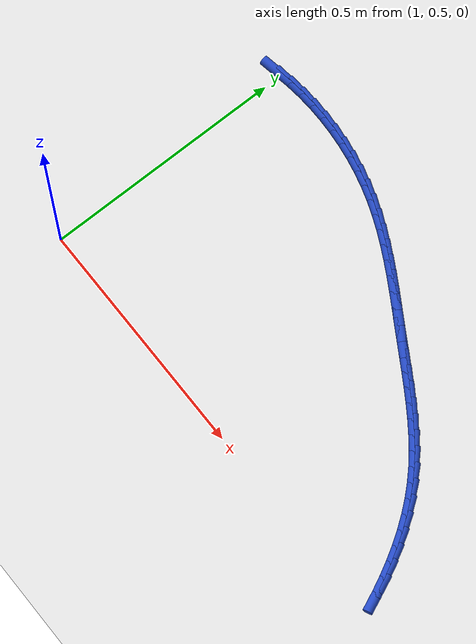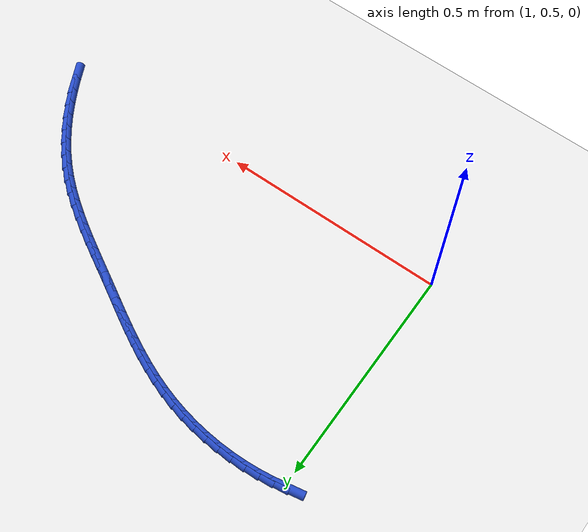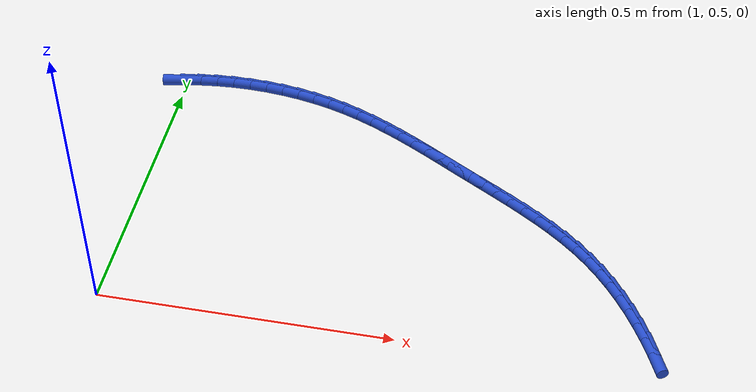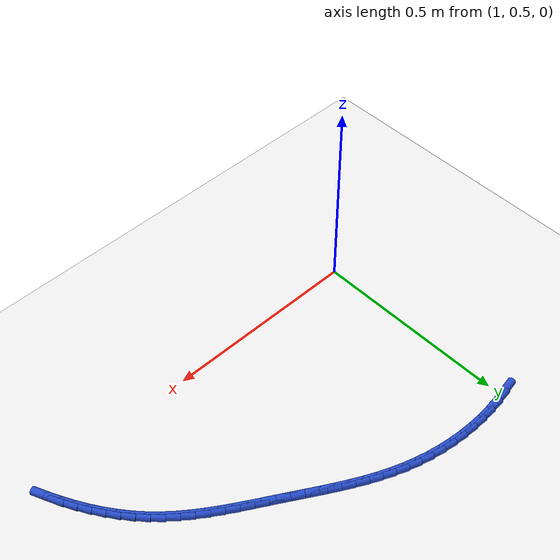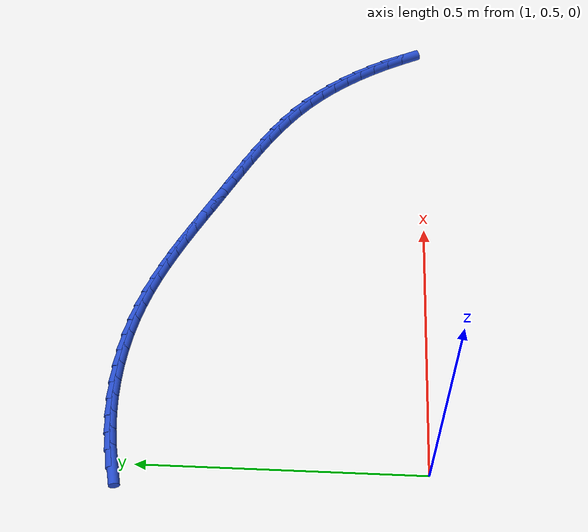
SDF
<sdf version="1.6">
 <world name="default">
  <model name="ground_plane">
   <static>1</static>
   <link name="link">
    <collision name="collision">
     <geometry><plane><normal>0 0 1</normal><size>100 100</size></plane></geometry>
     <surface><friction><ode><mu>100</mu><mu2>50</mu2></ode></friction></surface>
    </collision>
    <visual name="visual">
     <cast_shadows>0</cast_shadows>
     <geometry><plane><normal>0 0 1</normal><size>100 100</size></plane></geometry>
     <material>
      <script><uri>file://media/materials/scripts/gazebo.material</uri><name>Gazebo/WhiteGlow</name></script>
     </material>
    </visual>
   </link>
  </model>
  <model name="line">
   <link name="link_50">
    <pose>0.9953558554791279 1.0367086536794146 0.01 0 1.57 0.17591055692172775</pose>
    <collision name="collision">
     <geometry><cylinder><radius>0.01</radius><length>0.08</length></cylinder></geometry>
    </collision>
    <visual name="visual">
     <material>
      <script><name>Gazebo/Blue</name><uri>file://media/materials/scripts/gazebo.material</uri></script>
     </material>
     <geometry><cylinder><radius>0.01</radius><length>0.08</length></cylinder></geometry>
    </visual>
   </link>
   <link name="link_51">
    <pose>1.0264040082564816 1.0422273942406821 0.01 0 1.57 0.11814787920801474</pose>
    <collision name="collision">
     <geometry><cylinder><radius>0.01</radius><length>0.08</length></cylinder></geometry>
    </collision>
    <visual name="visual">
     <material>
      <script><name>Gazebo/Blue</name><uri>file://media/materials/scripts/gazebo.material</uri></script>
     </material>
     <geometry><cylinder><radius>0.01</radius><length>0.08</length></cylinder></geometry>
    </visual>
   </link>
   <link name="link_52">
    <pose>1.057905274626059 1.0459666167715465 0.01 0 1.57 0.06240167657679977</pose>
    <collision name="collision">
     <geometry><cylinder><radius>0.01</radius><length>0.08</length></cylinder></geometry>
    </collision>
    <visual name="visual">
     <material>
      <script><name>Gazebo/Blue</name><uri>file://media/materials/scripts/gazebo.material</uri></script>
     </material>
     <geometry><cylinder><radius>0.01</radius><length>0.08</length></cylinder></geometry>
    </visual>
   </link>
   <link name="link_53">
    <pose>1.089717144038422 1.0479543114352259 0.01 0 1.57 0.00825988952160205</pose>
    <collision name="collision">
     <geometry><cylinder><radius>0.01</radius><length>0.08</length></cylinder></geometry>
    </collision>
    <visual name="visual">
     <material>
      <script><name>Gazebo/Blue</name><uri>file://media/materials/scripts/gazebo.material</uri></script>
     </material>
     <geometry><cylinder><radius>0.01</radius><length>0.08</length></cylinder></geometry>
    </visual>
   </link>
   <link name="link_54">
    <pose>1.1216971059441296 1.0482184683949372 0.01 0 1.57 -0.044693425369481066</pose>
    <collision name="collision">
     <geometry><cylinder><radius>0.01</radius><length>0.08</length></cylinder></geometry>
    </collision>
    <visual name="visual">
     <material>
      <script><name>Gazebo/Blue</name><uri>file://media/materials/scripts/gazebo.material</uri></script>
     </material>
     <geometry><cylinder><radius>0.01</radius><length>0.08</length></cylinder></geometry>
    </visual>
   </link>
   <link name="link_55">
    <pose>1.1537026497937446 1.046787077813898 0.01 0 1.57 -0.09687618377099172</pose>
    <collision name="collision">
     <geometry><cylinder><radius>0.01</radius><length>0.08</length></cylinder></geometry>
    </collision>
    <visual name="visual">
     <material>
      <script><name>Gazebo/Blue</name><uri>file://media/materials/scripts/gazebo.material</uri></script>
     </material>
     <geometry><cylinder><radius>0.01</radius><length>0.08</length></cylinder></geometry>
    </visual>
   </link>
   <link name="link_56">
    <pose>1.1855912650378266 1.0436881298553242 0.01 0 1.57 -0.14870870924018223</pose>
    <collision name="collision">
     <geometry><cylinder><radius>0.01</radius><length>0.08</length></cylinder></geometry>
    </collision>
    <visual name="visual">
     <material>
      <script><name>Gazebo/Blue</name><uri>file://media/materials/scripts/gazebo.material</uri></script>
     </material>
     <geometry><cylinder><radius>0.01</radius><length>0.08</length></cylinder></geometry>
    </visual>
   </link>
   <link name="link_57">
    <pose>1.2172204411269365 1.0389496146824335 0.01 0 1.57 -0.20061572777143358</pose>
    <collision name="collision">
     <geometry><cylinder><radius>0.01</radius><length>0.08</length></cylinder></geometry>
    </collision>
    <visual name="visual">
     <material>
      <script><name>Gazebo/Blue</name><uri>file://media/materials/scripts/gazebo.material</uri></script>
     </material>
     <geometry><cylinder><radius>0.01</radius><length>0.08</length></cylinder></geometry>
    </visual>
   </link>
   <link name="link_58">
    <pose>1.2484476675116352 1.0325995224584432 0.01 0 1.57 -0.2530292478597628</pose>
    <collision name="collision">
     <geometry><cylinder><radius>0.01</radius><length>0.08</length></cylinder></geometry>
    </collision>
    <visual name="visual">
     <material>
      <script><name>Gazebo/Blue</name><uri>file://media/materials/scripts/gazebo.material</uri></script>
     </material>
     <geometry><cylinder><radius>0.01</radius><length>0.08</length></cylinder></geometry>
    </visual>
   </link>
   <link name="link_59">
    <pose>1.279130433642484 1.0246658433465707 0.01 0 1.57 -0.3062944268016827</pose>
    <collision name="collision">
     <geometry><cylinder><radius>0.01</radius><length>0.08</length></cylinder></geometry>
    </collision>
    <visual name="visual">
     <material>
      <script><name>Gazebo/Blue</name><uri>file://media/materials/scripts/gazebo.material</uri></script>
     </material>
     <geometry><cylinder><radius>0.01</radius><length>0.08</length></cylinder></geometry>
    </visual>
   </link>
   <link name="link_60">
    <pose>1.3091296381765127 1.0151786990245255 0.01 0 1.57 -0.35765296409318464</pose>
    <collision name="collision">
     <geometry><cylinder><radius>0.01</radius><length>0.08</length></cylinder></geometry>
    </collision>
    <visual name="visual">
     <material>
      <script><name>Gazebo/Blue</name><uri>file://media/materials/scripts/gazebo.material</uri></script>
     </material>
     <geometry><cylinder><radius>0.01</radius><length>0.08</length></cylinder></geometry>
    </visual>
   </link>
   <link name="link_61">
    <pose>1.338412757697989 1.0042348461475807 0.01 0 1.57 -0.403208440867464</pose>
    <collision name="collision">
     <geometry><cylinder><radius>0.01</radius><length>0.08</length></cylinder></geometry>
    </collision>
    <visual name="visual">
     <material>
      <script><name>Gazebo/Blue</name><uri>file://media/materials/scripts/gazebo.material</uri></script>
     </material>
     <geometry><cylinder><radius>0.01</radius><length>0.08</length></cylinder></geometry>
    </visual>
   </link>
   <link name="link_62">
    <pose>1.3670723335773254 0.9920092347590246 0.01 0 1.57 -0.442389218728154</pose>
    <collision name="collision">
     <geometry><cylinder><radius>0.01</radius><length>0.08</length></cylinder></geometry>
    </collision>
    <visual name="visual">
     <material>
      <script><name>Gazebo/Blue</name><uri>file://media/materials/scripts/gazebo.material</uri></script>
     </material>
     <geometry><cylinder><radius>0.01</radius><length>0.08</length></cylinder></geometry>
    </visual>
   </link>
   <link name="link_63">
    <pose>1.3952080434434846 0.9786812766555373 0.01 0 1.57 -0.47498944959321354</pose>
    <collision name="collision">
     <geometry><cylinder><radius>0.01</radius><length>0.08</length></cylinder></geometry>
    </collision>
    <visual name="visual">
     <material>
      <script><name>Gazebo/Blue</name><uri>file://media/materials/scripts/gazebo.material</uri></script>
     </material>
     <geometry><cylinder><radius>0.01</radius><length>0.08</length></cylinder></geometry>
    </visual>
   </link>
   <link name="link_64">
    <pose>1.4229195649254285 0.9644303836337998 0.01 0 1.57 -0.5009225792779068</pose>
    <collision name="collision">
     <geometry><cylinder><radius>0.01</radius><length>0.08</length></cylinder></geometry>
    </collision>
    <visual name="visual">
     <material>
      <script><name>Gazebo/Blue</name><uri>file://media/materials/scripts/gazebo.material</uri></script>
     </material>
     <geometry><cylinder><radius>0.01</radius><length>0.08</length></cylinder></geometry>
    </visual>
   </link>
   <link name="link_65">
    <pose>1.4503065756521196 0.9494359674904927 0.01 0 1.57 -0.5201802405362448</pose>
    <collision name="collision">
     <geometry><cylinder><radius>0.01</radius><length>0.08</length></cylinder></geometry>
    </collision>
    <visual name="visual">
     <material>
      <script><name>Gazebo/Blue</name><uri>file://media/materials/scripts/gazebo.material</uri></script>
     </material>
     <geometry><cylinder><radius>0.01</radius><length>0.08</length></cylinder></geometry>
    </visual>
   </link>
   <link name="link_66">
    <pose>1.4774687532525212 0.9338774400222963 0.01 0 1.57 -0.5327976883712991</pose>
    <collision name="collision">
     <geometry><cylinder><radius>0.01</radius><length>0.08</length></cylinder></geometry>
    </collision>
    <visual name="visual">
     <material>
      <script><name>Gazebo/Blue</name><uri>file://media/materials/scripts/gazebo.material</uri></script>
     </material>
     <geometry><cylinder><radius>0.01</radius><length>0.08</length></cylinder></geometry>
    </visual>
   </link>
   <link name="link_67">
    <pose>1.5045057753555953 0.9179342130258914 0.01 0 1.57 -0.538827927405153</pose>
    <collision name="collision">
     <geometry><cylinder><radius>0.01</radius><length>0.08</length></cylinder></geometry>
    </collision>
    <visual name="visual">
     <material>
      <script><name>Gazebo/Blue</name><uri>file://media/materials/scripts/gazebo.material</uri></script>
     </material>
     <geometry><cylinder><radius>0.01</radius><length>0.08</length></cylinder></geometry>
    </visual>
   </link>
   <link name="link_68">
    <pose>1.531517319590305 0.9017856982979588 0.01 0 1.57 -0.5383253404514637</pose>
    <collision name="collision">
     <geometry><cylinder><radius>0.01</radius><length>0.08</length></cylinder></geometry>
    </collision>
    <visual name="visual">
     <material>
      <script><name>Gazebo/Blue</name><uri>file://media/materials/scripts/gazebo.material</uri></script>
     </material>
     <geometry><cylinder><radius>0.01</radius><length>0.08</length></cylinder></geometry>
    </visual>
   </link>
   <link name="link_69">
    <pose>1.5586030579915682 0.8856113002994913 0.01 0 1.57 -0.5340646747950105</pose>
    <collision name="collision">
     <geometry><cylinder><radius>0.01</radius><length>0.08</length></cylinder></geometry>
    </collision>
    <visual name="visual">
     <material>
      <script><name>Gazebo/Blue</name><uri>file://media/materials/scripts/gazebo.material</uri></script>
     </material>
     <geometry><cylinder><radius>0.01</radius><length>0.08</length></cylinder></geometry>
    </visual>
   </link>
   <link name="link_70">
    <pose>1.585810009356946 0.8695213772529206 0.01 0 1.57 -0.5354538713124185</pose>
    <collision name="collision">
     <geometry><cylinder><radius>0.01</radius><length>0.08</length></cylinder></geometry>
    </collision>
    <visual name="visual">
     <material>
      <script><name>Gazebo/Blue</name><uri>file://media/materials/scripts/gazebo.material</uri></script>
     </material>
     <geometry><cylinder><radius>0.01</radius><length>0.08</length></cylinder></geometry>
    </visual>
   </link>
   <link name="link_71">
    <pose>1.6130036871650109 0.8533882723946312 0.01 0 1.57 -0.5445229784399765</pose>
    <collision name="collision">
     <geometry><cylinder><radius>0.01</radius><length>0.08</length></cylinder></geometry>
    </collision>
    <visual name="visual">
     <material>
      <script><name>Gazebo/Blue</name><uri>file://media/materials/scripts/gazebo.material</uri></script>
     </material>
     <geometry><cylinder><radius>0.01</radius><length>0.08</length></cylinder></geometry>
    </visual>
   </link>
   <link name="link_72">
    <pose>1.6400105234315538 0.8370330799184423 0.01 0 1.57 -0.5613517820341806</pose>
    <collision name="collision">
     <geometry><cylinder><radius>0.01</radius><length>0.08</length></cylinder></geometry>
    </collision>
    <visual name="visual">
     <material>
      <script><name>Gazebo/Blue</name><uri>file://media/materials/scripts/gazebo.material</uri></script>
     </material>
     <geometry><cylinder><radius>0.01</radius><length>0.08</length></cylinder></geometry>
    </visual>
   </link>
   <link name="link_73">
    <pose>1.6666569501723658 0.8202768940181727 0.01 0 1.57 -0.5860855720560209</pose>
    <collision name="collision">
     <geometry><cylinder><radius>0.01</radius><length>0.08</length></cylinder></geometry>
    </collision>
    <visual name="visual">
     <material>
      <script><name>Gazebo/Blue</name><uri>file://media/materials/scripts/gazebo.material</uri></script>
     </material>
     <geometry><cylinder><radius>0.01</radius><length>0.08</length></cylinder></geometry>
    </visual>
   </link>
   <link name="link_74">
    <pose>1.692769399403237 0.8029408088876421 0.01 0 1.57 -0.6189066775130571</pose>
    <collision name="collision">
     <geometry><cylinder><radius>0.01</radius><length>0.08</length></cylinder></geometry>
    </collision>
    <visual name="visual">
     <material>
      <script><name>Gazebo/Blue</name><uri>file://media/materials/scripts/gazebo.material</uri></script>
     </material>
     <geometry><cylinder><radius>0.01</radius><length>0.08</length></cylinder></geometry>
    </visual>
   </link>
   <link name="link_75">
    <pose>1.7181743031399594 0.7848459187206697 0.01 0 1.57 -0.6599889784825738</pose>
    <collision name="collision">
     <geometry><cylinder><radius>0.01</radius><length>0.08</length></cylinder></geometry>
    </collision>
    <visual name="visual">
     <material>
      <script><name>Gazebo/Blue</name><uri>file://media/materials/scripts/gazebo.material</uri></script>
     </material>
     <geometry><cylinder><radius>0.01</radius><length>0.08</length></cylinder></geometry>
    </visual>
   </link>
   <link name="link_76">
    <pose>1.7426980933983238 0.7658133177110741 0.01 0 1.57 -0.7094323298311118</pose>
    <collision name="collision">
     <geometry><cylinder><radius>0.01</radius><length>0.08</length></cylinder></geometry>
    </collision>
    <visual name="visual">
     <material>
      <script><name>Gazebo/Blue</name><uri>file://media/materials/scripts/gazebo.material</uri></script>
     </material>
     <geometry><cylinder><radius>0.01</radius><length>0.08</length></cylinder></geometry>
    </visual>
   </link>
   <link name="link_77">
    <pose>1.7661672021941195 0.7456641000526749 0.01 0 1.57 -0.7671541768516821</pose>
    <collision name="collision">
     <geometry><cylinder><radius>0.01</radius><length>0.08</length></cylinder></geometry>
    </collision>
    <visual name="visual">
     <material>
      <script><name>Gazebo/Blue</name><uri>file://media/materials/scripts/gazebo.material</uri></script>
     </material>
     <geometry><cylinder><radius>0.01</radius><length>0.08</length></cylinder></geometry>
    </visual>
   </link>
   <link name="link_78">
    <pose>1.7884084698463087 0.7242199176011412 0.01 0 1.57 -0.8292669303699153</pose>
    <collision name="collision">
     <geometry><cylinder><radius>0.01</radius><length>0.08</length></cylinder></geometry>
    </collision>
    <visual name="visual">
     <material>
      <script><name>Gazebo/Blue</name><uri>file://media/materials/scripts/gazebo.material</uri></script>
     </material>
     <geometry><cylinder><radius>0.01</radius><length>0.08</length></cylinder></geometry>
    </visual>
   </link>
   <link name="link_79">
    <pose>1.8093152958481817 0.7013933289575313 0.01 0 1.57 -0.8879883163287168</pose>
    <collision name="collision">
     <geometry><cylinder><radius>0.01</radius><length>0.08</length></cylinder></geometry>
    </collision>
    <visual name="visual">
     <material>
      <script><name>Gazebo/Blue</name><uri>file://media/materials/scripts/gazebo.material</uri></script>
     </material>
     <geometry><cylinder><radius>0.01</radius><length>0.08</length></cylinder></geometry>
    </visual>
   </link>
   <link name="link_80">
    <pose>1.8289207886246805 0.6772877076542217 0.01 0 1.57 -0.9423629893027269</pose>
    <collision name="collision">
     <geometry><cylinder><radius>0.01</radius><length>0.08</length></cylinder></geometry>
    </collision>
    <visual name="visual">
     <material>
      <script><name>Gazebo/Blue</name><uri>file://media/materials/scripts/gazebo.material</uri></script>
     </material>
     <geometry><cylinder><radius>0.01</radius><length>0.08</length></cylinder></geometry>
    </visual>
   </link>
   <link name="link_81">
    <pose>1.8472756683491722 0.6520304814091454 0.01 0 1.57 -0.9924956354046317</pose>
    <collision name="collision">
     <geometry><cylinder><radius>0.01</radius><length>0.08</length></cylinder></geometry>
    </collision>
    <visual name="visual">
     <material>
      <script><name>Gazebo/Blue</name><uri>file://media/materials/scripts/gazebo.material</uri></script>
     </material>
     <geometry><cylinder><radius>0.01</radius><length>0.08</length></cylinder></geometry>
    </visual>
   </link>
   <link name="link_82">
    <pose>1.8644306551950234 0.6257490779402339 0.01 0 1.57 -1.0385621849874633</pose>
    <collision name="collision">
     <geometry><cylinder><radius>0.01</radius><length>0.08</length></cylinder></geometry>
    </collision>
    <visual name="visual">
     <material>
      <script><name>Gazebo/Blue</name><uri>file://media/materials/scripts/gazebo.material</uri></script>
     </material>
     <geometry><cylinder><radius>0.01</radius><length>0.08</length></cylinder></geometry>
    </visual>
   </link>
   <link name="link_83">
    <pose>1.8804364693355986 0.5985709249654201 0.01 0 1.57 -1.0807821246334586</pose>
    <collision name="collision">
     <geometry><cylinder><radius>0.01</radius><length>0.08</length></cylinder></geometry>
    </collision>
    <visual name="visual">
     <material>
      <script><name>Gazebo/Blue</name><uri>file://media/materials/scripts/gazebo.material</uri></script>
     </material>
     <geometry><cylinder><radius>0.01</radius><length>0.08</length></cylinder></geometry>
    </visual>
   </link>
   <link name="link_84">
    <pose>1.8953438309442663 0.5706234502026366 0.01 0 1.57 -1.1193965616225612</pose>
    <collision name="collision">
     <geometry><cylinder><radius>0.01</radius><length>0.08</length></cylinder></geometry>
    </collision>
    <visual name="visual">
     <material>
      <script><name>Gazebo/Blue</name><uri>file://media/materials/scripts/gazebo.material</uri></script>
     </material>
     <geometry><cylinder><radius>0.01</radius><length>0.08</length></cylinder></geometry>
    </visual>
   </link>
   <link name="link_85">
    <pose>1.9092034601943908 0.5420340813698148 0.01 0 1.57 -1.1546518231381517</pose>
    <collision name="collision">
     <geometry><cylinder><radius>0.01</radius><length>0.08</length></cylinder></geometry>
    </collision>
    <visual name="visual">
     <material>
      <script><name>Gazebo/Blue</name><uri>file://media/materials/scripts/gazebo.material</uri></script>
     </material>
     <geometry><cylinder><radius>0.01</radius><length>0.08</length></cylinder></geometry>
    </visual>
   </link>
  </model>
 </world>
</sdf>
